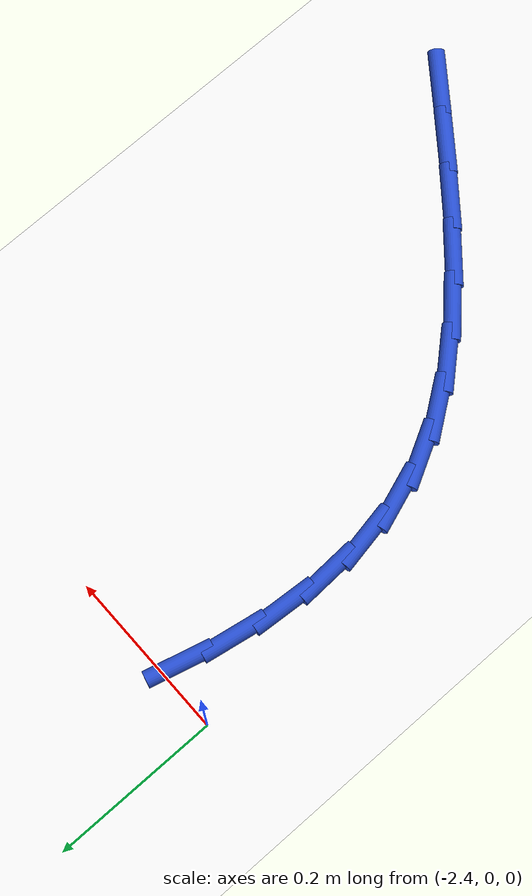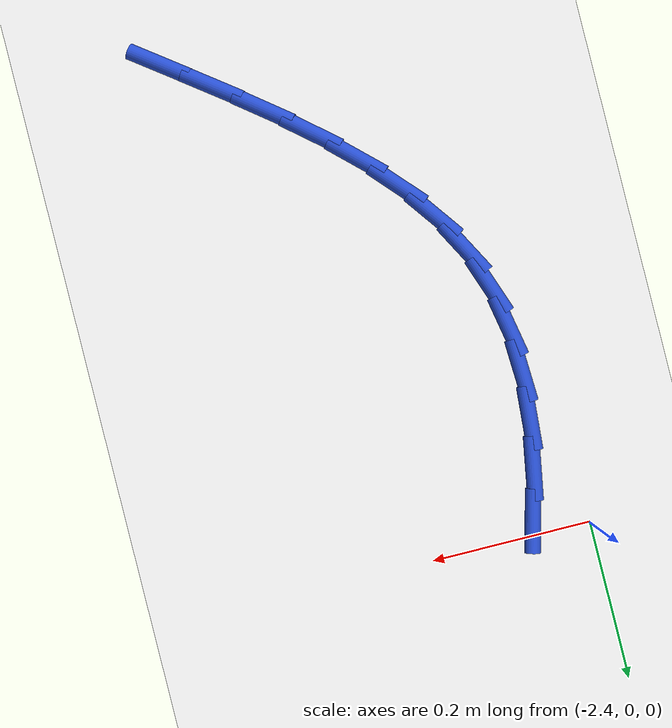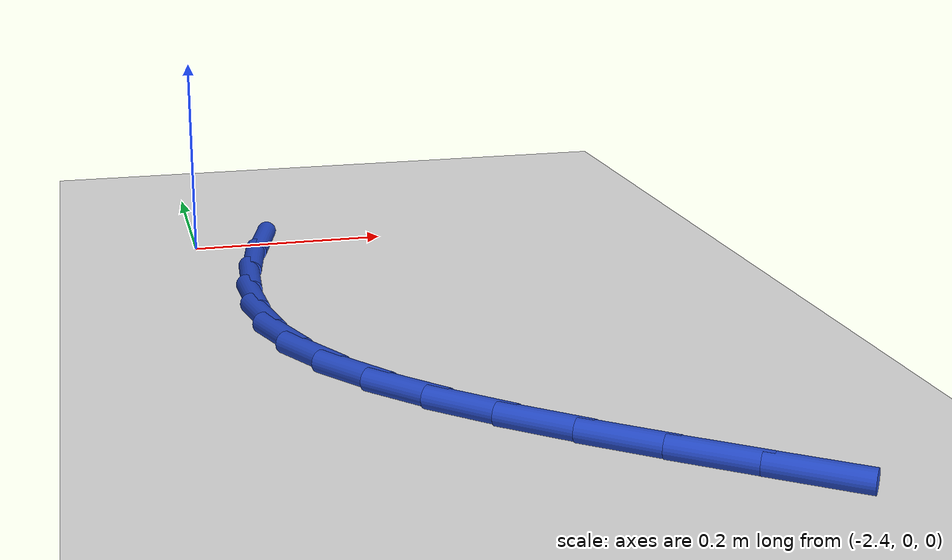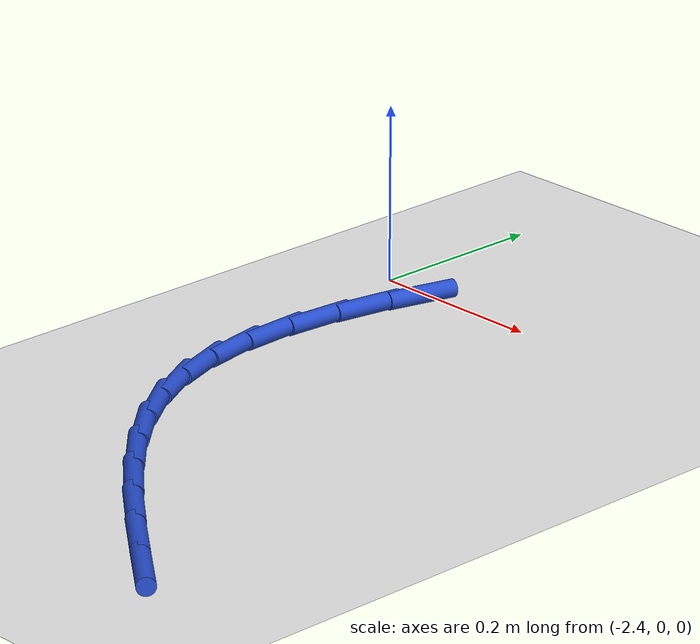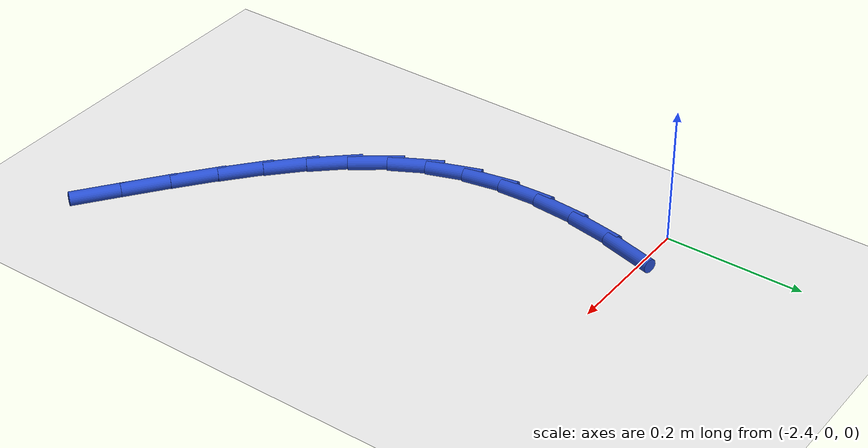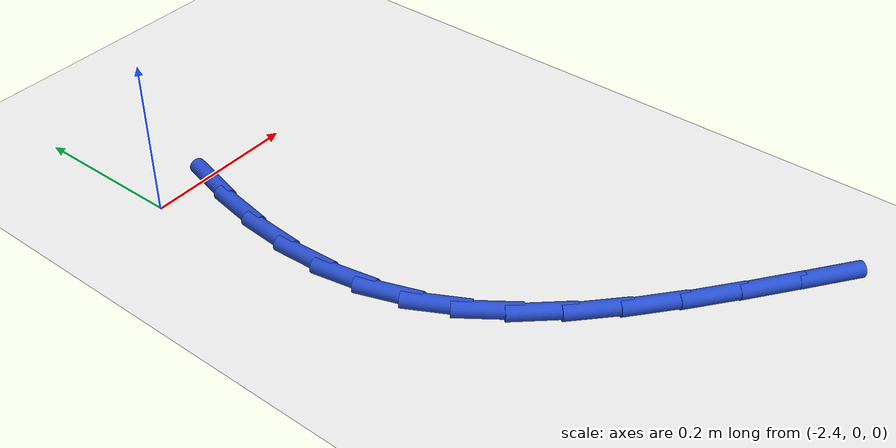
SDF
<sdf version="1.6">
 <world name="default">
  <model name="ground_plane">
   <static>1</static>
   <link name="link">
    <collision name="collision">
     <geometry><plane><normal>0 0 1</normal><size>100 100</size></plane></geometry>
     <surface><friction><ode><mu>100</mu><mu2>50</mu2></ode></friction></surface>
    </collision>
    <visual name="visual">
     <cast_shadows>0</cast_shadows>
     <geometry><plane><normal>0 0 1</normal><size>100 100</size></plane></geometry>
     <material>
      <script><uri>file://media/materials/scripts/gazebo.material</uri><name>Gazebo/WhiteGlow</name></script>
     </material>
    </visual>
   </link>
  </model>
  <model name="line">
   <link name="link_55">
    <pose>-2.3314570457865758 -0.020243656190252167 0.01 0 1.57 1.3150066342160462</pose>
    <collision name="collision">
     <geometry><cylinder><radius>0.01</radius><length>0.08</length></cylinder></geometry>
    </collision>
    <visual name="visual">
     <material>
      <script><name>Gazebo/Blue</name><uri>file://media/materials/scripts/gazebo.material</uri></script>
     </material>
     <geometry><cylinder><radius>0.01</radius><length>0.08</length></cylinder></geometry>
    </visual>
   </link>
   <link name="link_56">
    <pose>-2.347864742615471 -0.08298380443173974 0.01 0 1.57 1.3970841122358661</pose>
    <collision name="collision">
     <geometry><cylinder><radius>0.01</radius><length>0.08</length></cylinder></geometry>
    </collision>
    <visual name="visual">
     <material>
      <script><name>Gazebo/Blue</name><uri>file://media/materials/scripts/gazebo.material</uri></script>
     </material>
     <geometry><cylinder><radius>0.01</radius><length>0.08</length></cylinder></geometry>
    </visual>
   </link>
   <link name="link_57">
    <pose>-2.358598990914156 -0.1441542782616711 0.01 0 1.57 1.496493947269081</pose>
    <collision name="collision">
     <geometry><cylinder><radius>0.01</radius><length>0.08</length></cylinder></geometry>
    </collision>
    <visual name="visual">
     <material>
      <script><name>Gazebo/Blue</name><uri>file://media/materials/scripts/gazebo.material</uri></script>
     </material>
     <geometry><cylinder><radius>0.01</radius><length>0.08</length></cylinder></geometry>
    </visual>
   </link>
   <link name="link_58">
    <pose>-2.3630144478017288 -0.20347038955062252 0.01 0 1.57 -1.5262506408461098</pose>
    <collision name="collision">
     <geometry><cylinder><radius>0.01</radius><length>0.08</length></cylinder></geometry>
    </collision>
    <visual name="visual">
     <material>
      <script><name>Gazebo/Blue</name><uri>file://media/materials/scripts/gazebo.material</uri></script>
     </material>
     <geometry><cylinder><radius>0.01</radius><length>0.08</length></cylinder></geometry>
    </visual>
   </link>
   <link name="link_59">
    <pose>-2.360465770397288 -0.2606474501691731 0.01 0 1.57 -1.3873561952657147</pose>
    <collision name="collision">
     <geometry><cylinder><radius>0.01</radius><length>0.08</length></cylinder></geometry>
    </collision>
    <visual name="visual">
     <material>
      <script><name>Gazebo/Blue</name><uri>file://media/materials/scripts/gazebo.material</uri></script>
     </material>
     <geometry><cylinder><radius>0.01</radius><length>0.08</length></cylinder></geometry>
    </visual>
   </link>
   <link name="link_60">
    <pose>-2.3503076158199323 -0.3154007719878991 0.01 0 1.57 -1.2307984894206232</pose>
    <collision name="collision">
     <geometry><cylinder><radius>0.01</radius><length>0.08</length></cylinder></geometry>
    </collision>
    <visual name="visual">
     <material>
      <script><name>Gazebo/Blue</name><uri>file://media/materials/scripts/gazebo.material</uri></script>
     </material>
     <geometry><cylinder><radius>0.01</radius><length>0.08</length></cylinder></geometry>
    </visual>
   </link>
   <link name="link_61">
    <pose>-2.331897129866627 -0.3674468371184313 0.01 0 1.57 -1.0722814202665196</pose>
    <collision name="collision">
     <geometry><cylinder><radius>0.01</radius><length>0.08</length></cylinder></geometry>
    </collision>
    <visual name="visual">
     <material>
      <script><name>Gazebo/Blue</name><uri>file://media/materials/scripts/gazebo.material</uri></script>
     </material>
     <geometry><cylinder><radius>0.01</radius><length>0.08</length></cylinder></geometry>
    </visual>
   </link>
   <link name="link_62">
    <pose>-2.3050700979183425 -0.41672719645197565 0.01 0 1.57 -0.9389510053171397</pose>
    <collision name="collision">
     <geometry><cylinder><radius>0.01</radius><length>0.08</length></cylinder></geometry>
    </collision>
    <visual name="visual">
     <material>
      <script><name>Gazebo/Blue</name><uri>file://media/materials/scripts/gazebo.material</uri></script>
     </material>
     <geometry><cylinder><radius>0.01</radius><length>0.08</length></cylinder></geometry>
    </visual>
   </link>
   <link name="link_63">
    <pose>-2.270707115950093 -0.46367469799169625 0.01 0 1.57 -0.8345700371857472</pose>
    <collision name="collision">
     <geometry><cylinder><radius>0.01</radius><length>0.08</length></cylinder></geometry>
    </collision>
    <visual name="visual">
     <material>
      <script><name>Gazebo/Blue</name><uri>file://media/materials/scripts/gazebo.material</uri></script>
     </material>
     <geometry><cylinder><radius>0.01</radius><length>0.08</length></cylinder></geometry>
    </visual>
   </link>
   <link name="link_64">
    <pose>-2.2298266378714193 -0.5087870141266113 0.01 0 1.57 -0.7565144373985762</pose>
    <collision name="collision">
     <geometry><cylinder><radius>0.01</radius><length>0.08</length></cylinder></geometry>
    </collision>
    <visual name="visual">
     <material>
      <script><name>Gazebo/Blue</name><uri>file://media/materials/scripts/gazebo.material</uri></script>
     </material>
     <geometry><cylinder><radius>0.01</radius><length>0.08</length></cylinder></geometry>
    </visual>
   </link>
   <link name="link_65">
    <pose>-2.1834471175918666 -0.5525618172457412 0.01 0 1.57 -0.7011041123670566</pose>
    <collision name="collision">
     <geometry><cylinder><radius>0.01</radius><length>0.08</length></cylinder></geometry>
    </collision>
    <visual name="visual">
     <material>
      <script><name>Gazebo/Blue</name><uri>file://media/materials/scripts/gazebo.material</uri></script>
     </material>
     <geometry><cylinder><radius>0.01</radius><length>0.08</length></cylinder></geometry>
    </visual>
   </link>
   <link name="link_66">
    <pose>-2.132587009020975 -0.5954967797381058 0.01 0 1.57 -0.6649557956229443</pose>
    <collision name="collision">
     <geometry><cylinder><radius>0.01</radius><length>0.08</length></cylinder></geometry>
    </collision>
    <visual name="visual">
     <material>
      <script><name>Gazebo/Blue</name><uri>file://media/materials/scripts/gazebo.material</uri></script>
     </material>
     <geometry><cylinder><radius>0.01</radius><length>0.08</length></cylinder></geometry>
    </visual>
   </link>
   <link name="link_67">
    <pose>-2.0782647660682905 -0.6380895739927237 0.01 0 1.57 -0.6454583439472968</pose>
    <collision name="collision">
     <geometry><cylinder><radius>0.01</radius><length>0.08</length></cylinder></geometry>
    </collision>
    <visual name="visual">
     <material>
      <script><name>Gazebo/Blue</name><uri>file://media/materials/scripts/gazebo.material</uri></script>
     </material>
     <geometry><cylinder><radius>0.01</radius><length>0.08</length></cylinder></geometry>
    </visual>
   </link>
   <link name="link_68">
    <pose>-2.021498842643353 -0.6808378723986153 0.01 0 1.57 -0.6408354601554727</pose>
    <collision name="collision">
     <geometry><cylinder><radius>0.01</radius><length>0.08</length></cylinder></geometry>
    </collision>
    <visual name="visual">
     <material>
      <script><name>Gazebo/Blue</name><uri>file://media/materials/scripts/gazebo.material</uri></script>
     </material>
     <geometry><cylinder><radius>0.01</radius><length>0.08</length></cylinder></geometry>
    </visual>
   </link>
  </model>
 </world>
</sdf>
